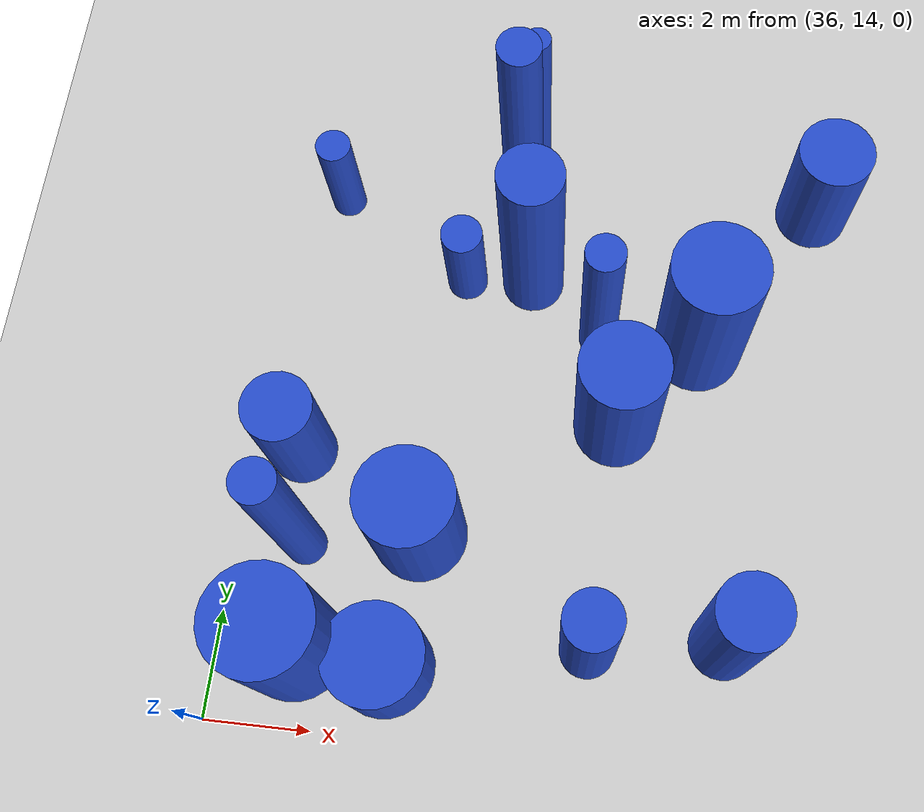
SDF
<sdf version="1.6">
 <world name="default">
  <model name="ground_plane">
   <static>1</static>
   <link name="link">
    <collision name="collision">
     <geometry><plane><normal>0 0 1</normal><size>100 100</size></plane></geometry>
     <surface><friction><ode><mu>100</mu><mu2>50</mu2></ode></friction></surface>
    </collision>
    <visual name="visual">
     <cast_shadows>0</cast_shadows>
     <geometry><plane><normal>0 0 1</normal><size>100 100</size></plane></geometry>
     <material>
      <script><uri>file://media/materials/scripts/gazebo.material</uri><name>Gazebo/Grey</name></script>
     </material>
    </visual>
   </link>
  </model>
  <model name="1">
   <static>0</static>
   <link name="link">
    <inertial>
     <mass>2</mass>
     <inertia><ixx>3.81588</ixx><ixy>0</ixy><ixz>0</ixz><iyy>3.81588</iyy><iyz>0</iyz><izz>0.158534</izz></inertia>
    </inertial>
    <collision name="collision">
     <geometry><cylinder><length>4.73494</length><radius>0.398164</radius></cylinder></geometry>
     <surface><contact><collide_without_contact>1</collide_without_contact></contact></surface>
    </collision>
    <visual name="visual">
     <geometry><cylinder><length>4.73494</length><radius>0.398164</radius></cylinder></geometry>
     <material>
      <script><uri>file://media/materials/scripts/gazebo.material</uri><name>Gazebo/Blue</name></script>
     </material>
    </visual>
    <gravity>0</gravity>
   </link>
   <pose>37.3386 17.4202 2.36747 0 -0 0</pose>
  </model>
  <model name="7">
   <static>0</static>
   <link name="link">
    <inertial>
     <mass>2</mass>
     <inertia><ixx>4.24686</ixx><ixy>0</ixy><ixz>0</ixz><iyy>4.24686</iyy><iyz>0</iyz><izz>0.171142</izz></inertia>
    </inertial>
    <collision name="collision">
     <geometry><cylinder><length>4.99677</length><radius>0.413693</radius></cylinder></geometry>
     <surface><contact><collide_without_contact>1</collide_without_contact></contact></surface>
    </collision>
    <visual name="visual">
     <geometry><cylinder><length>4.99677</length><radius>0.413693</radius></cylinder></geometry>
     <material>
      <script><uri>file://media/materials/scripts/gazebo.material</uri><name>Gazebo/Blue</name></script>
     </material>
    </visual>
    <gravity>0</gravity>
   </link>
   <pose>40.5992 25.5949 2.49839 0 -0 0</pose>
  </model>
  <model name="9">
   <static>0</static>
   <link name="link">
    <inertial>
     <mass>2</mass>
     <inertia><ixx>2.49906</ixx><ixy>0</ixy><ixz>0</ixz><iyy>2.49906</iyy><iyz>0</iyz><izz>0.95958</izz></inertia>
    </inertial>
    <collision name="collision">
     <geometry><cylinder><length>3.48075</length><radius>0.979581</radius></cylinder></geometry>
     <surface><contact><collide_without_contact>1</collide_without_contact></contact></surface>
    </collision>
    <visual name="visual">
     <geometry><cylinder><length>3.48075</length><radius>0.979581</radius></cylinder></geometry>
     <material>
      <script><uri>file://media/materials/scripts/gazebo.material</uri><name>Gazebo/Blue</name></script>
     </material>
    </visual>
    <gravity>0</gravity>
   </link>
   <pose>37.4825 15.4558 1.74037 0 -0 0</pose>
  </model>
  <model name="10">
   <static>0</static>
   <link name="link">
    <inertial>
     <mass>2</mass>
     <inertia><ixx>2.47867</ixx><ixy>0</ixy><ixz>0</ixz><iyy>2.47867</iyy><iyz>0</iyz><izz>0.684649</izz></inertia>
    </inertial>
    <collision name="collision">
     <geometry><cylinder><length>3.58024</length><radius>0.827435</radius></cylinder></geometry>
     <surface><contact><collide_without_contact>1</collide_without_contact></contact></surface>
    </collision>
    <visual name="visual">
     <geometry><cylinder><length>3.58024</length><radius>0.827435</radius></cylinder></geometry>
     <material>
      <script><uri>file://media/materials/scripts/gazebo.material</uri><name>Gazebo/Blue</name></script>
     </material>
    </visual>
    <gravity>0</gravity>
   </link>
   <pose>43.0104 20.4105 1.79012 0 -0 0</pose>
  </model>
  <model name="16">
   <static>0</static>
   <link name="link">
    <inertial>
     <mass>2</mass>
     <inertia><ixx>1.52106</ixx><ixy>0</ixy><ixz>0</ixz><iyy>1.52106</iyy><iyz>0</iyz><izz>0.42879</izz></inertia>
    </inertial>
    <collision name="collision">
     <geometry><cylinder><length>2.8</length><radius>0.65482</radius></cylinder></geometry>
     <surface><contact><collide_without_contact>1</collide_without_contact></contact></surface>
    </collision>
    <visual name="visual">
     <geometry><cylinder><length>2.8</length><radius>0.65482</radius></cylinder></geometry>
     <material>
      <script><uri>file://media/materials/scripts/gazebo.material</uri><name>Gazebo/Blue</name></script>
     </material>
    </visual>
    <gravity>0</gravity>
   </link>
   <pose>36.9714 19.2595 1.4 0 -0 0</pose>
  </model>
  <model name="20">
   <static>0</static>
   <link name="link">
    <inertial>
     <mass>2</mass>
     <inertia><ixx>2.82224</ixx><ixy>0</ixy><ixz>0</ixz><iyy>2.82224</iyy><iyz>0</iyz><izz>0.140236</izz></inertia>
    </inertial>
    <collision name="collision">
     <geometry><cylinder><length>4.06358</length><radius>0.374481</radius></cylinder></geometry>
     <surface><contact><collide_without_contact>1</collide_without_contact></contact></surface>
    </collision>
    <visual name="visual">
     <geometry><cylinder><length>4.06358</length><radius>0.374481</radius></cylinder></geometry>
     <material>
      <script><uri>file://media/materials/scripts/gazebo.material</uri><name>Gazebo/Blue</name></script>
     </material>
    </visual>
    <gravity>0</gravity>
   </link>
   <pose>42.4835 22.2448 2.03179 0 -0 0</pose>
  </model>
  <model name="23">
   <static>0</static>
   <link name="link">
    <inertial>
     <mass>2</mass>
     <inertia><ixx>3.02897</ixx><ixy>0</ixy><ixz>0</ixz><iyy>3.02897</iyy><iyz>0</iyz><izz>0.799249</izz></inertia>
    </inertial>
    <collision name="collision">
     <geometry><cylinder><length>3.97191</length><radius>0.894007</radius></cylinder></geometry>
     <surface><contact><collide_without_contact>1</collide_without_contact></contact></surface>
    </collision>
    <visual name="visual">
     <geometry><cylinder><length>3.97191</length><radius>0.894007</radius></cylinder></geometry>
     <material>
      <script><uri>file://media/materials/scripts/gazebo.material</uri><name>Gazebo/Blue</name></script>
     </material>
    </visual>
    <gravity>0</gravity>
   </link>
   <pose>44.5026 22.2198 1.98596 0 -0 0</pose>
  </model>
  <model name="30">
   <static>0</static>
   <link name="link">
    <inertial>
     <mass>2</mass>
     <inertia>
      <ixx>0.948335</ixx>
      <ixy>0</ixy>
      <ixz>0</ixz>
      <iyy>0.948335</iyy>
      <iyz>0</iyz>
      <izz>0.118719</izz>
     </inertia>
    </inertial>
    <collision name="collision">
     <geometry><cylinder><length>2.30951</length><radius>0.344557</radius></cylinder></geometry>
     <surface><contact><collide_without_contact>1</collide_without_contact></contact></surface>
    </collision>
    <visual name="visual">
     <geometry><cylinder><length>2.30951</length><radius>0.344557</radius></cylinder></geometry>
     <material>
      <script><uri>file://media/materials/scripts/gazebo.material</uri><name>Gazebo/Blue</name></script>
     </material>
    </visual>
    <gravity>0</gravity>
   </link>
   <pose>36.9819 24.7904 1.15476 0 -0 0</pose>
  </model>
  <model name="39">
   <static>0</static>
   <link name="link">
    <inertial>
     <mass>2</mass>
     <inertia>
      <ixx>0.895212</ixx>
      <ixy>0</ixy>
      <ixz>0</ixz>
      <iyy>0.895212</iyy>
      <iyz>0</iyz>
      <izz>0.162805</izz>
     </inertia>
    </inertial>
    <collision name="collision">
     <geometry><cylinder><length>2.20972</length><radius>0.403491</radius></cylinder></geometry>
     <surface><contact><collide_without_contact>1</collide_without_contact></contact></surface>
    </collision>
    <visual name="visual">
     <geometry><cylinder><length>2.20972</length><radius>0.403491</radius></cylinder></geometry>
     <material>
      <script><uri>file://media/materials/scripts/gazebo.material</uri><name>Gazebo/Blue</name></script>
     </material>
    </visual>
    <gravity>0</gravity>
   </link>
   <pose>39.7052 23.2253 1.10486 0 -0 0</pose>
  </model>
  <model name="55">
   <static>0</static>
   <link name="link">
    <inertial>
     <mass>2</mass>
     <inertia><ixx>1.46159</ixx><ixy>0</ixy><ixz>0</ixz><iyy>1.46159</iyy><iyz>0</iyz><izz>0.545159</izz></inertia>
    </inertial>
    <collision name="collision">
     <geometry><cylinder><length>2.67097</length><radius>0.738349</radius></cylinder></geometry>
     <surface><contact><collide_without_contact>1</collide_without_contact></contact></surface>
    </collision>
    <visual name="visual">
     <geometry><cylinder><length>2.67097</length><radius>0.738349</radius></cylinder></geometry>
     <material>
      <script><uri>file://media/materials/scripts/gazebo.material</uri><name>Gazebo/Blue</name></script>
     </material>
    </visual>
    <gravity>0</gravity>
   </link>
   <pose>46.6874 25.4916 1.33548 0 -0 0</pose>
  </model>
  <model name="77">
   <static>0</static>
   <link name="link">
    <inertial>
     <mass>2</mass>
     <inertia><ixx>3.70884</ixx><ixy>0</ixy><ixz>0</ixz><iyy>3.70884</iyy><iyz>0</iyz><izz>0.383531</izz></inertia>
    </inertial>
    <collision name="collision">
     <geometry><cylinder><length>4.59374</length><radius>0.619299</radius></cylinder></geometry>
     <surface><contact><collide_without_contact>1</collide_without_contact></contact></surface>
    </collision>
    <visual name="visual">
     <geometry><cylinder><length>4.59374</length><radius>0.619299</radius></cylinder></geometry>
     <material>
      <script><uri>file://media/materials/scripts/gazebo.material</uri><name>Gazebo/Blue</name></script>
     </material>
    </visual>
    <gravity>0</gravity>
   </link>
   <pose>41.0513 23.3285 2.29687 0 -0 0</pose>
  </model>
  <model name="101">
   <static>0</static>
   <link name="link">
    <inertial>
     <mass>2</mass>
     <inertia><ixx>2.52382</ixx><ixy>0</ixy><ixz>0</ixz><iyy>2.52382</iyy><iyz>0</iyz><izz>0.271897</izz></inertia>
    </inertial>
    <collision name="collision">
     <geometry><cylinder><length>3.78514</length><radius>0.521438</radius></cylinder></geometry>
     <surface><contact><collide_without_contact>1</collide_without_contact></contact></surface>
    </collision>
    <visual name="visual">
     <geometry><cylinder><length>3.78514</length><radius>0.521438</radius></cylinder></geometry>
     <material>
      <script><uri>file://media/materials/scripts/gazebo.material</uri><name>Gazebo/Blue</name></script>
     </material>
    </visual>
    <gravity>0</gravity>
   </link>
   <pose>42.8813 15.9971 1.89257 0 -0 0</pose>
  </model>
  <model name="106">
   <static>0</static>
   <link name="link">
    <inertial>
     <mass>2</mass>
     <inertia><ixx>1.98531</ixx><ixy>0</ixy><ixz>0</ixz><iyy>1.98531</iyy><iyz>0</iyz><izz>0.825751</izz></inertia>
    </inertial>
    <collision name="collision">
     <geometry><cylinder><length>3.07158</length><radius>0.908708</radius></cylinder></geometry>
     <surface><contact><collide_without_contact>1</collide_without_contact></contact></surface>
    </collision>
    <visual name="visual">
     <geometry><cylinder><length>3.07158</length><radius>0.908708</radius></cylinder></geometry>
     <material>
      <script><uri>file://media/materials/scripts/gazebo.material</uri><name>Gazebo/Blue</name></script>
     </material>
    </visual>
    <gravity>0</gravity>
   </link>
   <pose>39.4858 17.8355 1.53579 0 -0 0</pose>
  </model>
  <model name="116">
   <static>0</static>
   <link name="link">
    <inertial>
     <mass>2</mass>
     <inertia>
      <ixx>2.61659</ixx>
      <ixy>0</ixy>
      <ixz>0</ixz>
      <iyy>2.61659</iyy>
      <iyz>0</iyz>
      <izz>0.0647721</izz>
     </inertia>
    </inertial>
    <collision name="collision">
     <geometry><cylinder><length>3.93767</length><radius>0.254504</radius></cylinder></geometry>
     <surface><contact><collide_without_contact>1</collide_without_contact></contact></surface>
    </collision>
    <visual name="visual">
     <geometry><cylinder><length>3.93767</length><radius>0.254504</radius></cylinder></geometry>
     <material>
      <script><uri>file://media/materials/scripts/gazebo.material</uri><name>Gazebo/Blue</name></script>
     </material>
    </visual>
    <gravity>0</gravity>
   </link>
   <pose>40.8198 26.5162 1.96883 0 -0 0</pose>
  </model>
  <model name="208">
   <static>0</static>
   <link name="link">
    <inertial>
     <mass>2</mass>
     <inertia><ixx>2.88239</ixx><ixy>0</ixy><ixz>0</ixz><iyy>2.88239</iyy><iyz>0</iyz><izz>0.418174</izz></inertia>
    </inertial>
    <collision name="collision">
     <geometry><cylinder><length>4.00498</length><radius>0.646664</radius></cylinder></geometry>
     <surface><contact><collide_without_contact>1</collide_without_contact></contact></surface>
    </collision>
    <visual name="visual">
     <geometry><cylinder><length>4.00498</length><radius>0.646664</radius></cylinder></geometry>
     <material>
      <script><uri>file://media/materials/scripts/gazebo.material</uri><name>Gazebo/Blue</name></script>
     </material>
    </visual>
    <gravity>0</gravity>
   </link>
   <pose>45.3882 16.3678 2.00249 0 -0 0</pose>
  </model>
  <model name="243">
   <static>0</static>
   <link name="link">
    <inertial>
     <mass>2</mass>
     <inertia><ixx>1.10068</ixx><ixy>0</ixy><ixz>0</ixz><iyy>1.10068</iyy><iyz>0</iyz><izz>0.856696</izz></inertia>
    </inertial>
    <collision name="collision">
     <geometry><cylinder><length>2.00848</length><radius>0.925579</radius></cylinder></geometry>
     <surface><contact><collide_without_contact>1</collide_without_contact></contact></surface>
    </collision>
    <visual name="visual">
     <geometry><cylinder><length>2.00848</length><radius>0.925579</radius></cylinder></geometry>
     <material>
      <script><uri>file://media/materials/scripts/gazebo.material</uri><name>Gazebo/Blue</name></script>
     </material>
    </visual>
    <gravity>0</gravity>
   </link>
   <pose>39.1964 15.2826 1.00424 0 -0 0</pose>
  </model>
 </world>
</sdf>
